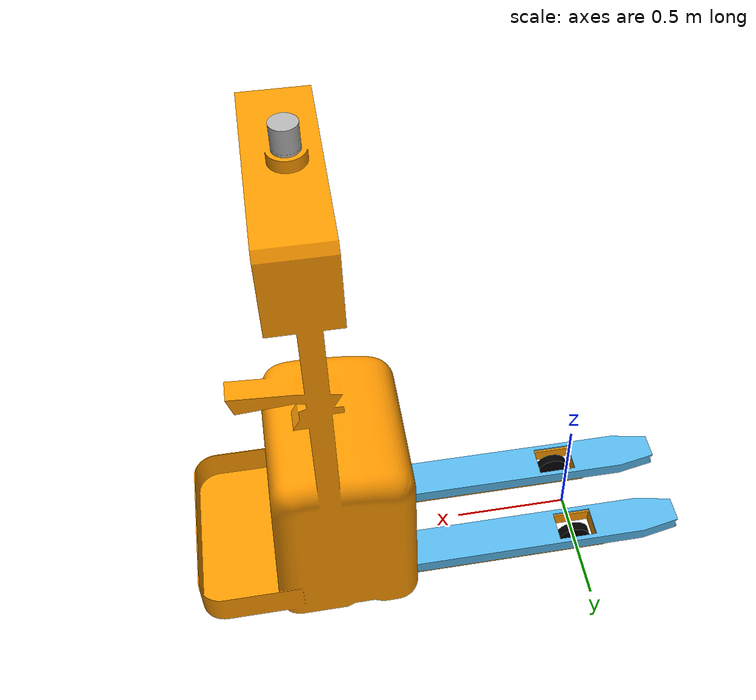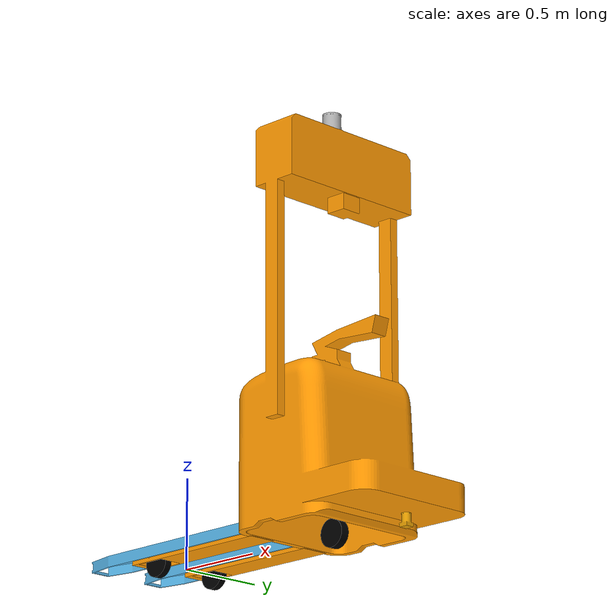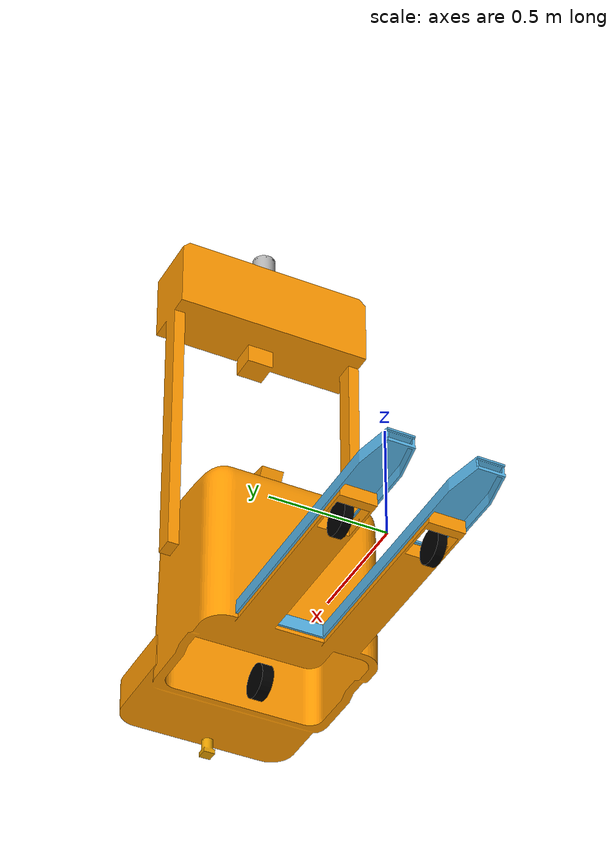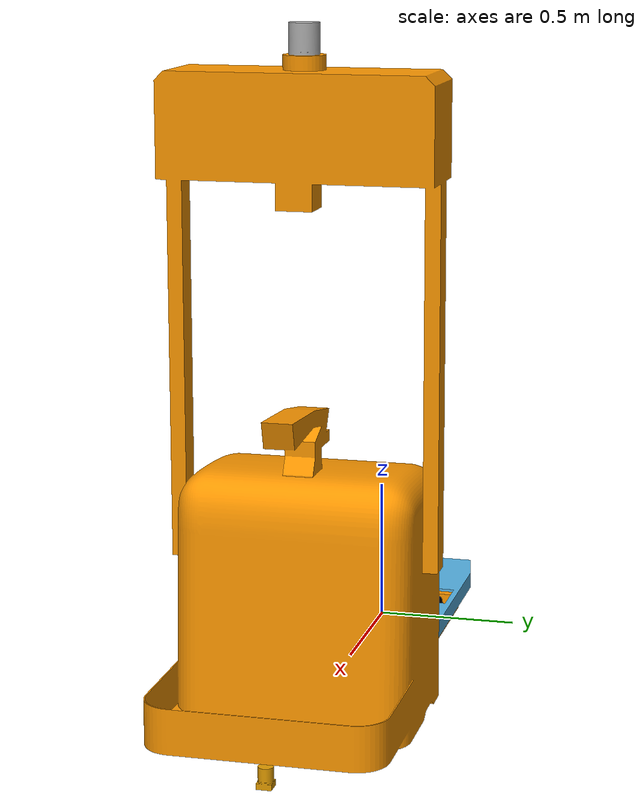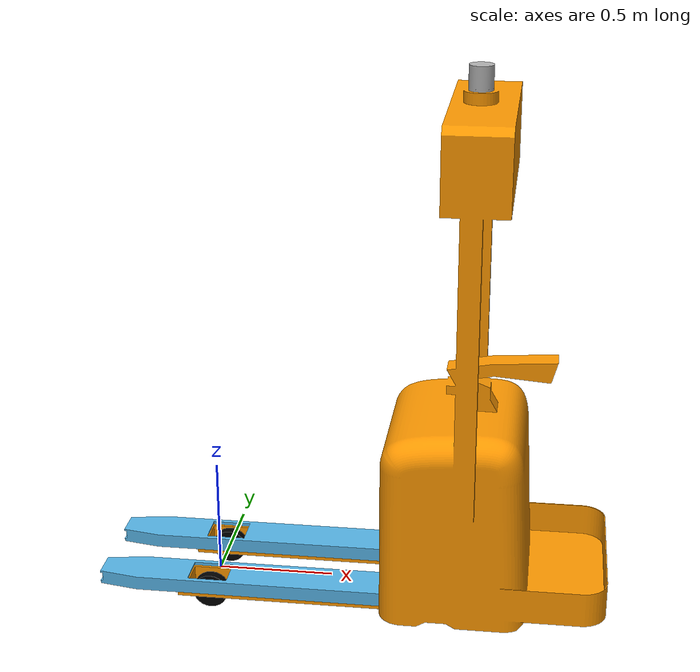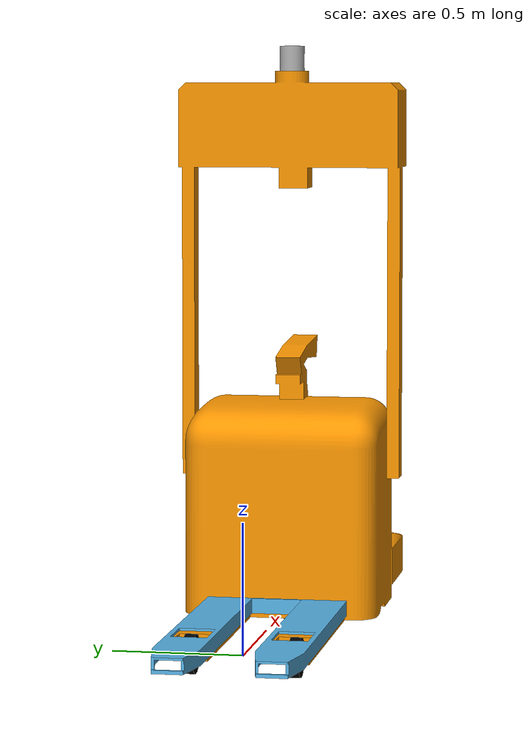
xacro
<?xml version="1.0"?>
<robot name="warehouse_bot" xmlns:xacro="http://ros.org/wiki/xacro">

    <xacro:arg name="robot_name" default="robot_1"/>
    <xacro:include filename="$(find warehouse_bot)/urdf/robot_control_gazebo.xacro" />

    <material name="Black">
        <color rgba="0 0 0 1" />
    </material>
    <material name="Grey">
        <color rgba="0.8 0.8 0.8 1" />
    </material>
    <material name="Orange">
        <color rgba="1 0.6 0 1" />
    </material>
    <material name="White">
        <color rgba="1 1 1 1" />
    </material>

    <link name="$(arg robot_name)_base_footprint">
    </link>

    <joint name="$(arg robot_name)_base_footprint_joint" type="fixed">
        <parent link="$(arg robot_name)_base_footprint"/>
        <child link="$(arg robot_name)_chassis"/>
        <origin xyz="0 0 0" rpy="0 0 0"/>
    </joint>

    <!-- Chassis -->
    <link name="$(arg robot_name)_chassis">
        <visual>
            <origin xyz="0 0 -0.02" rpy="0 0 0"/>
            <geometry>
                <mesh filename="file://$(find warehouse_bot)/meshes/chassis.stl" scale="0.001 0.001 0.001"/>
            </geometry>
            <material name="Orange"/>
        </visual>
        <collision>
            <origin xyz="0 0 -0.02" rpy="0 0 0"/>
            <geometry>
                <mesh filename="file://$(find warehouse_bot)/meshes/chassis.stl" scale="0.001 0.001 0.001"/>
            </geometry>
        </collision>
        <inertial>
            <origin xyz="0 0 0" rpy="0 0 0" />
            <mass value="70" />
            <inertia ixx="0.126164" ixy="0.0" ixz="0.0" iyy="0.416519" iyz="0.0" izz="0.481014" />
        </inertial>
    </link>

    <!-- Front Steering Hinge Link -->
    <link name="$(arg robot_name)_front_steering_hinge_link">
        <inertial>
            <origin xyz="0 0 0" rpy="0 0 0" />
            <mass value="50" />
            <inertia ixx="4E-06" ixy="0" ixz="0" iyy="4E-06" iyz="0" izz="4E-06" />
        </inertial>
        <visual>
            <origin xyz="0 0 0" rpy="0 0 0" />
            <geometry>
                <box size="0.005 0.005 0.005"/>
            </geometry>
        </visual>
    </link>

    <joint name="$(arg robot_name)_front_steering_hinge_joint" type="revolute">
        <origin xyz="1.1 0 0" rpy="0 0 0" />
        <parent link="$(arg robot_name)_chassis" />
        <child link="$(arg robot_name)_front_steering_hinge_link" />
        <axis xyz="0 0 1" />
        <limit lower="-0.7853" upper="0.7853" effort="10" velocity="100" />
    </joint>

    <!-- Front Wheel Link -->
    <link name="$(arg robot_name)_front_wheel_link">
        <inertial>
            <origin xyz="0.0 0.0 0.0" rpy="0 0 0"/>
            <mass value="2"/>
            <inertia ixx="0.00025" iyy="0.00014" izz="0.00014" ixy="0.0" iyz="0.0" ixz="0.0"/>
        </inertial>
        <visual>
            <origin xyz="0 0 0" rpy="0 0 0"/>
            <geometry>
                <cylinder length="0.05" radius="0.075" />
            </geometry>
            <material name="Black"/>
        </visual>
        <collision>
            <origin xyz="0 0 0" rpy="0 0 0"/>
            <geometry>
                <cylinder length="0.05" radius="0.075" />
            </geometry>
        </collision>
    </link>

    <joint name="$(arg robot_name)_front_wheel_joint" type="continuous">
        <origin xyz="0.0 0.0 0.0" rpy="-1.57 1.57 0" />
        <parent link="$(arg robot_name)_front_steering_hinge_link" />
        <child link="$(arg robot_name)_front_wheel_link" />
        <axis xyz="0 0 1" />
        <limit effort="10" velocity="100" />
    </joint>

    <!-- Rear Left Wheel Link -->
    <link name="$(arg robot_name)_lr_wheel_link">
        <inertial>
            <origin xyz="0.0 0.0 0.0" rpy="0 0 0"/>
            <mass value="2"/>
            <inertia ixx="0.00025" iyy="0.00014" izz="0.00014" ixy="0.0" iyz="0.0" ixz="0.0"/>
        </inertial>
        <visual>
            <geometry>
                <cylinder length="0.04" radius="0.075" />
            </geometry>
            <material name="Black"/>
        </visual>
        <collision>
            <origin xyz="0 0 0" rpy="0 0 0"/>
            <geometry>
                <cylinder length="0.04" radius="0.075" />
            </geometry>
        </collision>
    </link>

    <joint name="$(arg robot_name)_lr_wheel_joint" type="continuous">
        <origin xyz="0 0.2 0" rpy="-1.57 0 0" />
        <parent link="$(arg robot_name)_chassis" />
        <child link="$(arg robot_name)_lr_wheel_link" />
        <axis xyz="0 0 1" />
    </joint>

    <!-- Rear Right Wheel Link -->
    <link name="$(arg robot_name)_rr_wheel_link">
        <inertial>
            <origin xyz="0.0 0.0 0.0" rpy="0 0 0"/>
            <mass value="0.20069792517970372"/>
            <inertia ixx="0.00025" iyy="0.00014" izz="0.00014" ixy="0.0" iyz="0.0" ixz="0.0"/>
        </inertial>
        <visual>
            <origin xyz="0 0 0" rpy="0 0 0"/>
            <geometry>
                <cylinder length="0.04" radius="0.075" />
            </geometry>
            <material name="Black"/>
        </visual>
        <collision>
            <origin xyz="0 0 0" rpy="0 0 0"/>
            <geometry>
                <cylinder length="0.04" radius="0.075" />
            </geometry>
        </collision>
    </link>

    <joint name="$(arg robot_name)_rr_wheel_joint" type="continuous">
        <origin xyz="0 -0.2 0" rpy="-1.57 0 0" />
        <parent link="$(arg robot_name)_chassis" />
        <child link="$(arg robot_name)_rr_wheel_link" />
        <axis xyz="0 0 1" />
    </joint>

    <!-- IMU Link -->
    <link name="$(arg robot_name)_imu_link">
        <inertial>
            <mass value="0.01"/>
            <inertia ixx="1.0" ixy="0" ixz="0" iyy="1.0" iyz="0" izz="1.0"/>
        </inertial>
    </link>

    <joint name="$(arg robot_name)_imu_joint" type="fixed">
        <origin xyz="0.2715 0 0.041" rpy="0 0 0"/>
        <parent link="$(arg robot_name)_chassis"/>
        <child link="$(arg robot_name)_imu_link"/>
    </joint>

    <link name="$(arg robot_name)_line_lidar_1">
        <inertial>
            <origin xyz="0 0 0" rpy="0 0 0"/>
            <mass value="1"/>
            <inertia ixx="0.00068" iyy="0.00068" izz="0.000389" ixy="0.0" iyz="-0.0" ixz="-0.0"/>
        </inertial>
        <visual>
            <origin xyz="-1.1 0.0 -2.26" rpy="0 0 0"/>
            <geometry>
                <mesh filename="file://$(find warehouse_bot)/meshes/16line_lidar_1.stl" scale="0.001 0.001 0.001"/>
            </geometry>
        </visual>
        <collision>
            <origin xyz="-1.1 0.0 -2.26" rpy="0 0 0"/>
            <geometry>
                <mesh filename="file://$(find warehouse_bot)/meshes/16line_lidar_1.stl" scale="0.001 0.001 0.001"/>
            </geometry>
        </collision>
    </link>

    <link name="$(arg robot_name)_laser_frame_under">
        <inertial>
            <origin xyz="0 0 0" rpy="0 0 0"/>
            <mass value="10"/>
            <inertia ixx="0.00068" iyy="0.00068" izz="0.000389" ixy="0.0" iyz="-0.0" ixz="-0.0"/>
        </inertial>
        <visual>
            <origin xyz="-1.475 0 0.005" rpy="3.14 0 0"/>
            <geometry>
                <mesh filename="file://$(find warehouse_bot)/meshes/1line_lidar_1.stl" scale="0.001 0.001 0.001"/>
            </geometry>
        </visual>
        <collision>
            <origin xyz="-1.475 0 0.005" rpy="3.14 0 0"/>
            <geometry>
                <mesh filename="file://$(find warehouse_bot)/meshes/1line_lidar_1.stl" scale="0.001 0.001 0.001"/>
            </geometry>
        </collision>
    </link>

    <link name="$(arg robot_name)_fork_1">
        <inertial>
            <origin xyz="0 0 0" rpy="0 0 0"/>
            <mass value="10"/>
            <inertia ixx="0.1" ixy="0.0" ixz="0.0" iyy="0.1" iyz="0.0" izz="0.155" />
        </inertial>
        <visual>
            <origin xyz="0.0 0.0 -0.03" rpy="0 0 0"/>
            <geometry>
                <mesh filename="file://$(find warehouse_bot)/meshes/fork_1.stl" scale="0.001 0.001 0.001"/>
            </geometry>
        </visual>
        <collision>
            <origin xyz="0.0 0 -0.03" rpy="0 0 0"/>
            <geometry>
                <mesh filename="file://$(find warehouse_bot)/meshes/fork_1.stl" scale="0.001 0.001 0.001"/>
            </geometry>
        </collision>
    </link>

    <joint name="$(arg robot_name)_fork_joint" type="fixed">
        <origin xyz="0.0 0.0 0.022893" rpy="0 0 0"/>
        <parent link="$(arg robot_name)_chassis"/>
        <child link="$(arg robot_name)_fork_1"/>
    </joint>

    <joint name="$(arg robot_name)_16line_lidar_joint" type="fixed">
        <origin xyz="1.1 0.0 2.24" rpy="0 0 0"/>
        <parent link="$(arg robot_name)_chassis"/>
        <child link="$(arg robot_name)_line_lidar_1"/>
    </joint>

    <joint name="$(arg robot_name)_laser_joint1" type="fixed">
        <origin xyz="1.6 0.0 0.02" rpy="0 0 0"/>
        <parent link="$(arg robot_name)_chassis"/>
        <child link="$(arg robot_name)_laser_frame_under"/>
    </joint>
  <xacro:robot_gazebo_systems robot_name="$(arg robot_name)"/>
</robot>
